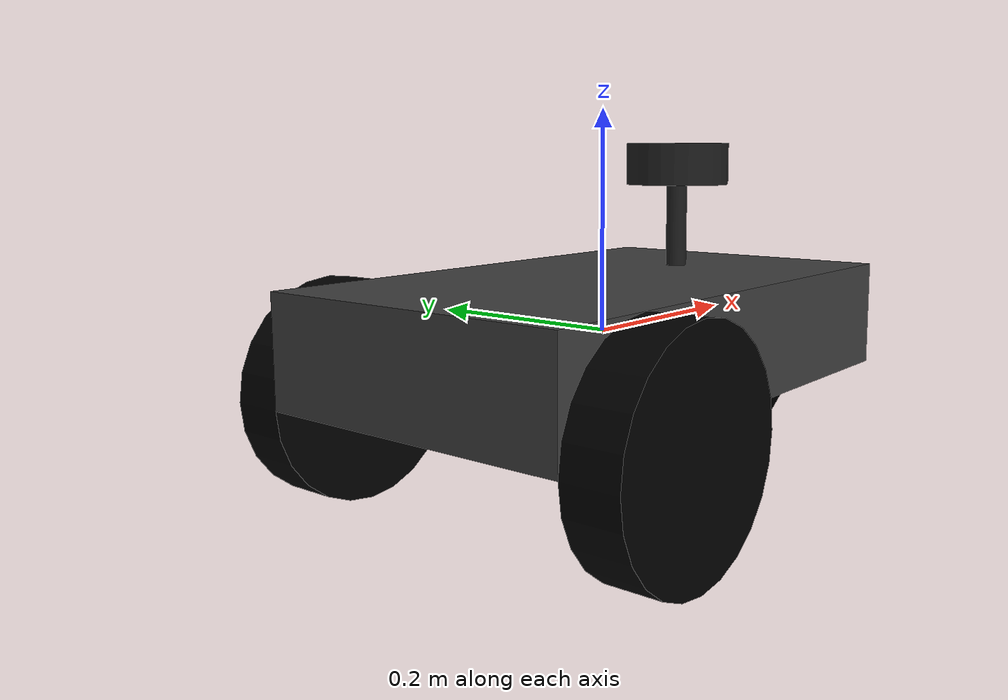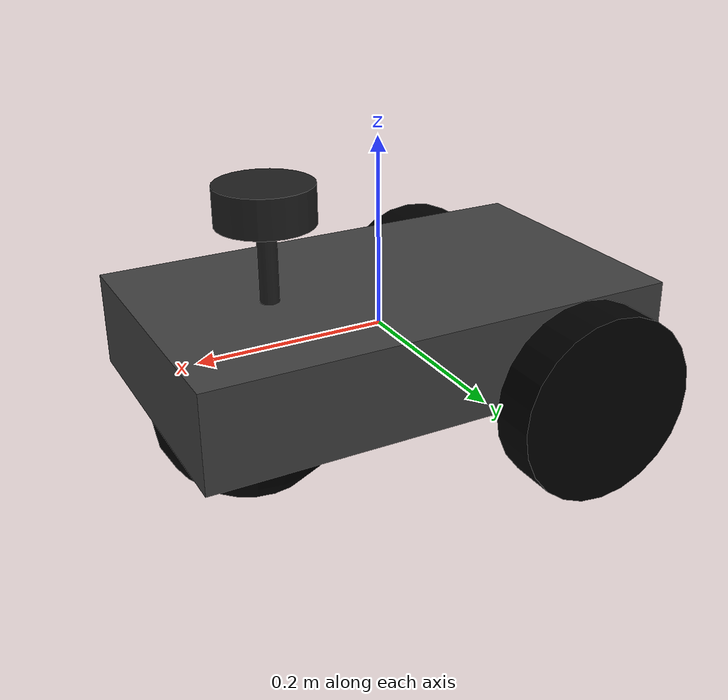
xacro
<?xml version="1.0"?>

<robot name="differential_drive_robot" xmlns:xacro="http://www.ros.org/wiki/xacro">

    <!-- Robot Parameters -->
    <xacro:property name="PI" value="3.14159265"/>
    <xacro:property name="body_length" value="0.5"/>
    <xacro:property name="body_width" value="0.3"/>
    <xacro:property name="body_height" value="0.1"/>
    <xacro:property name="body_density" value="7850.0"/> <!-- Steel -->
    <xacro:property name="body_mass" value="${body_density * body_length * body_height * body_width}"/>
    <xacro:property name="body_inertia_x" value="${1.0/12.0 * body_mass * (body_height*body_height + body_width*body_width)}"/>
    <xacro:property name="body_inertia_y" value="${1.0/12.0 * body_mass * (body_length*body_length + body_height*body_height)}"/>
    <xacro:property name="body_inertia_z" value="${1.0/12.0 * body_mass * (body_length*body_length + body_width*body_width)}"/>

    <xacro:property name="wheel_radius" value="0.1"/>
    <xacro:property name="wheel_width" value="0.05"/>
    <xacro:property name="wheel_separation" value="${body_width + wheel_width}"/>
    <xacro:property name="wheel_offset" value="${body_length/2 - wheel_radius}"/>
    <xacro:property name="wheel_density" value="900"/> <!-- Ruber -->
    <xacro:property name="wheel_mass" value="${wheel_density * PI * wheel_radius * wheel_radius * wheel_width}"/>
    <xacro:property name="wheel_inertia_x" value="${1.0/12.0 * wheel_mass * (3*wheel_radius*wheel_radius + wheel_width*wheel_width)}"/>
    <xacro:property name="wheel_inertia_y" value="${1.0/12.0 * wheel_mass * (3*wheel_radius*wheel_radius + wheel_width*wheel_width)}"/>
    <xacro:property name="wheel_inertia_z" value="${1.0/2.0 * wheel_mass * wheel_radius * wheel_radius}"/>

    <xacro:property name="caster_radius" value="0.1"/>
    <xacro:property name="caster_offset" value="${body_length/2 - caster_radius}"/>
    <xacro:property name="caster_density" value="0.1"/>
    <xacro:property name="caster_mass" value="${caster_density * 4.0/3.0 * PI * caster_radius * caster_radius * caster_radius}"/>
    <xacro:property name="caster_inertia_x" value="${2.0/5.0 * caster_mass * caster_radius * caster_radius}"/>
    <xacro:property name="caster_inertia_y" value="${2.0/5.0 * caster_mass * caster_radius * caster_radius}"/>
    <xacro:property name="caster_inertia_z" value="${2.0/5.0 * caster_mass * caster_radius * caster_radius}"/>
    <!-- Macros -->
    <xacro:macro name="inertial_cylinder" params="mass length radius *origin">
        <inertial>
            <xacro:insert_block name="origin"/>
            <mass value="${mass}" />
            <inertia ixx="${(1/12) * mass * (3*radius*radius + length*length)}" ixy="0.0" ixz="0.0"
                    iyy="${(1/12) * mass * (3*radius*radius + length*length)}" iyz="0.0"
                    izz="${(1/2) * mass * (radius*radius)}" />
        </inertial>
    </xacro:macro>
    <!-- Control Parameters -->
    <xacro:property name="max_linear_acceleration" value="10"/>

    <!-- Links -->

    <!-- BASE_FOOTPRINT LINK -->

    <joint name="base_footprint_joint" type="fixed">
        <parent link="base_link"/>
        <child link="base_footprint"/>
        <origin xyz="0 0 0" rpy="0 0 0"/>
    </joint>

    <link name="base_footprint">
    </link>
    <!-- Base Link -->
    <link name="base_link">
        <visual>
            <origin xyz="0.0 0.0 0.0" rpy="0.0 0.0 0.0"/>
            <geometry>
                <box size="${body_length} ${body_width} ${body_height}"/>
            </geometry>
            <material name="body_material">
                <color rgba="0.25 0.25 0.25 1.0"/>
            </material>
        </visual>
        <collision>
            <origin xyz="0.0 0.0 0.0" rpy="0.0 0.0 0.0"/>
            <geometry>
                <box size="${body_length} ${body_width} ${body_height}"/>
            </geometry>
        </collision>
        <inertial>
            <mass value="10"/>
            <inertia ixx="${body_inertia_x}" ixy="0.0" ixz="0.0" iyy="${body_inertia_y}" iyz="0" izz="${body_inertia_z}"/>
            <origin xyz="0 0 0" rpy="0 0 0"/>
        </inertial>
    </link>

    <!-- Left Wheel -->
    <link name="left_wheel_link">
        <visual>
            <origin xyz="0.0 0.0 0.0" rpy="1.570795 0.0 0.0"/>
            <geometry>
                <cylinder radius="${wheel_radius}" length="${wheel_width}"/>
            </geometry>
            <material name="wheel_material">
                <color rgba="0.0 0.0 0.0 1.0"/>
            </material>
        </visual>
        <collision>
            <origin xyz="0.0 0.0 0.0" rpy="1.570795 0.0 0.0"/>
            <geometry>
                <cylinder radius="${wheel_radius}" length="${wheel_width}"/>
            </geometry>
        </collision>
        <inertial>
            <mass value="2"/>
            <inertia ixx="${wheel_inertia_x}" ixy="0.0" ixz="0.0" iyy="${wheel_inertia_y}" iyz="0" izz="${wheel_inertia_z}"/>
            <origin xyz="0.0 0.0 0.0" rpy="1.570795 0.0 0.0"/>
        </inertial>
    </link>

    <!-- Right Wheel -->
    <link name="right_wheel_link">
        <visual>
            <origin xyz="0.0 0.0 0.0" rpy="1.570795 0.0 0.0"/>
            <geometry>
                <cylinder radius="${wheel_radius}" length="${wheel_width}"/>
            </geometry>
            <material name="wheel_material">
                <color rgba="0.0 0.0 0.0 1.0"/>
            </material>
        </visual>
        <collision>
            <origin xyz="0.0 0.0 0.0" rpy="1.570795 0.0 0.0"/>
            <geometry>
                <cylinder radius="${wheel_radius}" length="${wheel_width}"/>
            </geometry>
        </collision>
        <inertial>
            <mass value="2"/>
            <inertia ixx="${wheel_inertia_x}" ixy="0.0" ixz="0.0" iyy="${wheel_inertia_y}" iyz="0" izz="${wheel_inertia_z}"/>
            <origin xyz="0.0 0.0 0.0" rpy="1.570795 0.0 0.0"/>
        </inertial>
    </link>

    <!-- Caster Wheel -->
    <link name="caster_link">
        <visual>
            <origin xyz="0.0 0.0 0.0" rpy="0.0 0.0 0.0"/>
            <geometry>
                <sphere radius="${caster_radius}"/>
            </geometry>
            <material name="caster_material">
                <color rgba="0.0 0.0 0.0 1.0"/>
            </material>
        </visual>
        <collision>
            <origin xyz="0.0 0.0 0.0" rpy="0.0 0.0 0.0"/>
            <geometry>
                <sphere radius="${caster_radius}"/>
            </geometry>
        </collision>
        <inertial>
            <mass value="0.5"/>
            <inertia ixx="${caster_inertia_x}" ixy="0.0" ixz="0.0" iyy="${caster_inertia_y}" iyz="0" izz="${caster_inertia_z}"/>
            <origin xyz="0 0 0" rpy="0 0 0"/>
        </inertial>
    </link>

    <!-- Joints -->

    <!-- Left Wheel Joint -->
    <joint name="left_wheel_joint" type="continuous">
        <origin xyz="-${wheel_offset} ${wheel_separation/2} -${wheel_radius/2}" rpy="0 0 0"/>
        <parent link="base_link"/>
        <child link="left_wheel_link"/>
        <axis xyz="0 1 0"/>
        <limit effort="100" velocity="10.0"/>
        <dynamics damping="0.1" friction="0.1"/>
    </joint>

    <!-- Right Wheel Joint -->
    <joint name="right_wheel_joint" type="continuous">
        <origin xyz="-${wheel_offset} ${-wheel_separation/2} -${wheel_radius/2}" rpy="0 0 0"/>
        <parent link="base_link"/>
        <child link="right_wheel_link"/>
        <axis xyz="0 1 0"/>
        <limit effort="100" velocity="10.0"/>
        <dynamics damping="0.1" friction="0.1"/>
    </joint>

    <!-- Laser -->
     <joint name="laser_joint" type="fixed">
        <parent link="base_link"/>
        <child link="laser_frame"/>
        <origin xyz="0.122 0 0.15" rpy="0 0 0"/>
    </joint>

    <link name="laser_frame">
        <visual>
            <geometry>
                <cylinder radius="0.05" length="0.04"/>
            </geometry>
            <material name="black"/>
        </visual>
        <visual>
            <origin xyz="0 0 -0.05"/>
            <geometry>
                <cylinder radius="0.01" length="0.1"/>
            </geometry>
            <material name="black"/>
        </visual>
        <collision>
            <geometry>
                <cylinder radius="0.05" length="0.04"/>
            </geometry>
        </collision>
        <xacro:inertial_cylinder mass="0.1" length="0.04" radius="0.05">
            <origin xyz="0 0 0" rpy="0 0 0"/>
        </xacro:inertial_cylinder>
    </link>

    <gazebo reference="laser_frame">
	  <selfCollide>false</selfCollide>
      <mu1 value="0.05" />
      <mu2 value="0.05" />
    </gazebo>
    <gazebo reference="laser_frame" >
    <sensor name='gpu_lidar' type='gpu_lidar'>"
        <gz_frame_id>laser_frame</gz_frame_id>
        <pose relative_to='laser_frame'>0 0 0 0 0 0</pose>
        <topic>scan</topic>
        <update_rate>10</update_rate>
        <lidar>
            <scan>
                <horizontal>
                    <samples>640</samples>
                    <resolution>1</resolution>
                    <min_angle>-3.14</min_angle>
                    <max_angle>3.14</max_angle>
                </horizontal>
                <vertical>
                    <samples>1</samples>
                    <resolution>0.01</resolution>
                    <min_angle>0</min_angle>
                    <max_angle>0</max_angle>
                </vertical>
            </scan>
            <range>
                <min>0.08</min>
                <max>30.0</max>
                <resolution>0.01</resolution>
            </range>
            <frame_id>/laser_frame</frame_id>
        </lidar>
        <always_on>1</always_on>
        <visualize>true</visualize>
    </sensor>
    </gazebo>
    <!-- Caster Wheel Joint (fixed) -->
    <joint name="caster_joint" type="fixed">
        <origin xyz="${caster_offset} 0 -${caster_radius/2}" rpy="0 0 0"/>
        <parent link="base_link"/>
        <child link="caster_link"/>
    </joint>

    <!-- Gazebo Parameters -->
    <gazebo reference="base_link">
        <mu1>1.0</mu1>
        <mu2>1.0</mu2>
    </gazebo>

    <gazebo reference="right_wheel_link">
        <mu1>1.0</mu1>
        <mu2>1.0</mu2>
    </gazebo>

    <gazebo reference="left_wheel_link">
        <mu1>1.0</mu1>
        <mu2>1.0</mu2>
    </gazebo>

    <gazebo reference="caster_link">
        <mu1>0.000001</mu1>
        <mu2>0.000001</mu2>
    </gazebo>
    <ros2_control name="RealRobot" type="system">
            <hardware>
                <plugin>diffdrive_arduino/DiffDriveArduino</plugin>
                <param name="left_wheel_name">left_wheel_joint</param>
                <param name="right_wheel_name">right_wheel_joint</param>
                <param name="loop_rate">30</param>
                <param name="device">/dev/ttyACM0</param>
                <param name="baud_rate">57600</param>
                <param name="timeout">1000</param>
                <param name="enc_counts_per_rev">3436</param>
            </hardware>
            <joint name="left_wheel_joint">
                <command_interface name="velocity">
                    <param name="min">-10</param>
                    <param name="max">10</param>
                </command_interface>
                <state_interface name="position"/>
                <state_interface name="velocity"/>
            </joint>
            <joint name="right_wheel_joint">
                <command_interface name="velocity">
                    <param name="min">-10</param>
                    <param name="max">10</param>
                </command_interface>
                <state_interface name="position"/>
                <state_interface name="velocity"/>
            </joint>
    </ros2_control>

    <!-- Gazebo Plugins -->
    <gazebo>

        <plugin filename="gz-sim-sensors-system" name="gz::sim::systems::Sensors">
            <render_engine>ogre2</render_engine>
        </plugin>
        <plugin filename="gz-sim-joint-state-publisher-system" name="gz::sim::systems::JointStatePublisher">
            <topic>joint_states</topic>
            <joint_name>right_wheel_joint</joint_name>
            <joint_name>left_wheel_joint</joint_name>
        </plugin>

        <plugin name="gz_ros2_control::GazeboSimROS2ControlPlugin" filename="libgz_ros2_control-system">
            <parameters>$(find differential_drive_robot)/config/my_controllers.yaml</parameters>
            <parameters>$(find differential_drive_robot)/config/gaz_ros2_ctl_use_sim.yaml</parameters>
        </plugin>
    </gazebo>

</robot>
